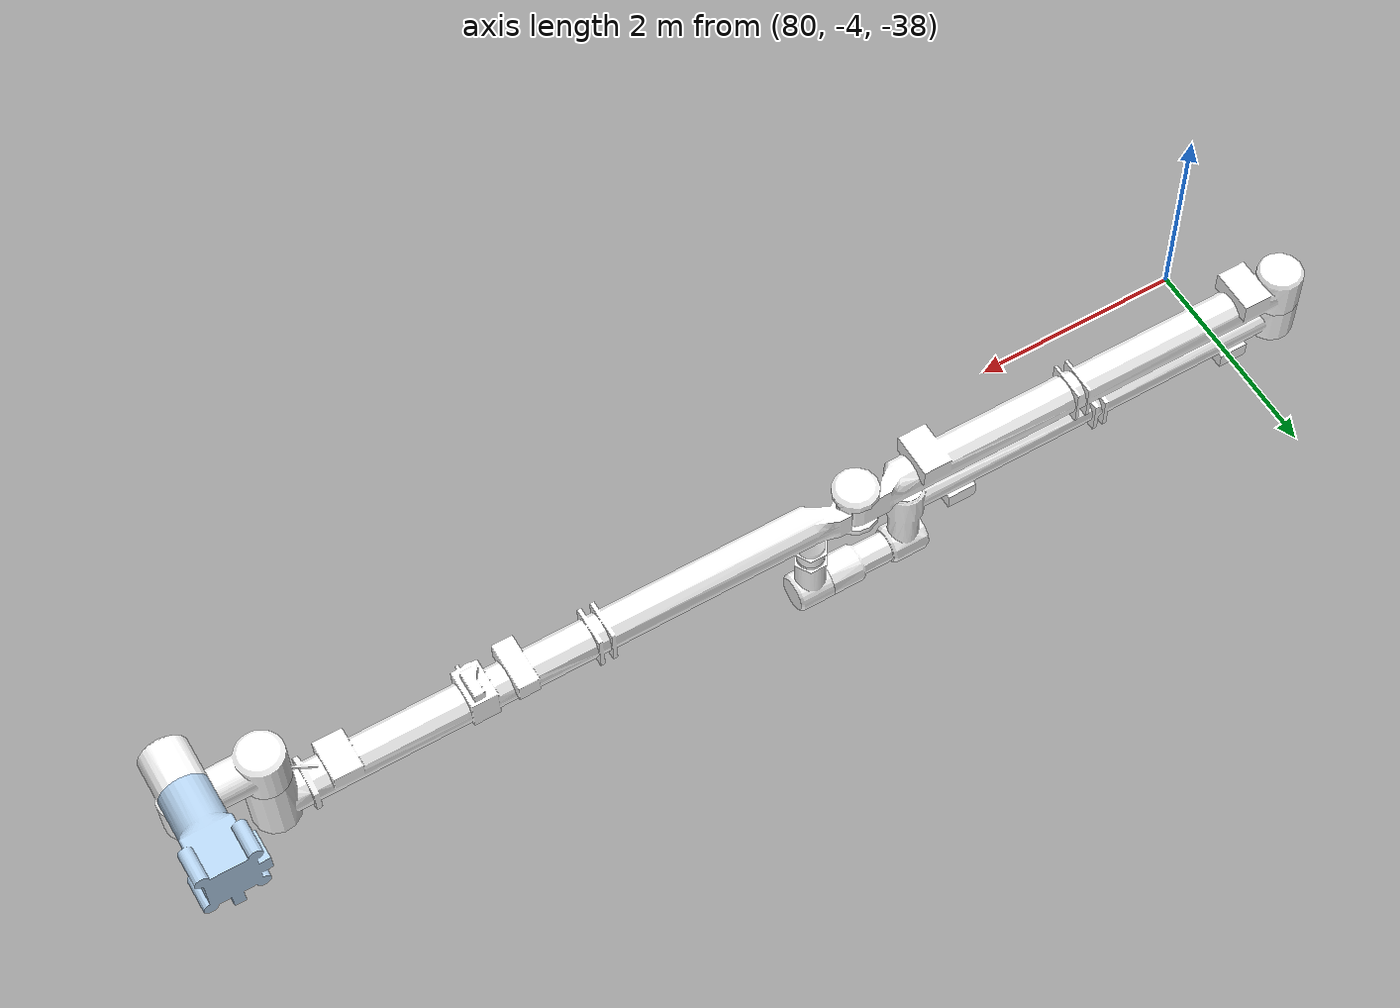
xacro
<?xml version="1.0"?>
<robot xmlns:xacro="http://www.ros.org/wiki/xacro" name="bean2">
    <xacro:arg name="initial_positions_file" default="initial_positions.yaml" />

    <!-- Import bean2 urdf file -->
    <xacro:include filename="$(find bean3_description)/urdf/bean2.urdf" />

    <!-- Import control_xacro -->
    <xacro:include filename="bean2.ros2_control.xacro" />

    <xacro:bean2_ros2_control name="GazeboSystem"
	    initial_positions_file="$(arg initial_positions_file)"/>

    <!-- ros gz plugin -->
    <gazebo>
	    <plugin filename="gz_ros2_control-system"
		    name="gz_ros2_control::GazeboSimROS2ControlPlugin">
	    <ros>
		    <namespace>bean</namespace>
	    </ros>
	    <parameters>$(find bean2_moveit)/config/ros2_controllers.yaml</parameters>
    </plugin>
    <!-- detachable joint plugin-->
	    <plugin filename="gz-sim-detachable-joint-system"
    name="gz::sim::systems::DetachableJoint">
    		<parent_link>docking_frame</parent_link>
    		<child_model>capsule</child_model>
    		<child_link>docking_target</child_link>
    		<detach_topic>/bean/detach</detach_topic>
    		<attach_topic>/bean/attach</attach_topic>
    		<output_topic>/bean/state</output_topic>
		</plugin>
    </gazebo>
</robot>

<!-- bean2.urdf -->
<robot name="bean2">
  <!-- adding fixed frame link for gazebo -->
  <link name="world"/>

<!-- Virtual Joint to fix robot to ISS -->
  <joint name="fixedFrameToWorld" type="fixed">
    <parent link="world"/>
    <child link="bean_base_link"/>
    <origin rpy="1.57 1.57 0.0" xyz="90.1 -1.95 -36.0"/>
  </joint>

  <!-- Basic Extraterrestrial Articulated maNipulator2 (BEAN2) is defined-->
  <link
    name="bean_base_link">
    <inertial>
      <origin
        xyz="0.0076403 -0.0077316 0.30748"
        rpy="0 0 0" />
      <mass
        value="140.69" />
      <inertia
        ixx="8.9233"
        ixy="-0.0083106"
        ixz="0.19212"
        iyy="8.9454"
        iyz="-0.18789"
        izz="5.5009" />
    </inertial>
    <visual>
      <origin
        xyz="0 0 0"
        rpy="0 0 0" />
      <geometry>
        <mesh
          filename="package://bean3_description/meshes/base_link.STL" />
      </geometry>
      <material
        name="">
        <color
          rgba="0.706 0.82 0.929 1" />
      </material>
    </visual>
    <collision>
      <origin
        xyz="0 0 0"
        rpy="0 0 0" />
      <geometry>
        <mesh
          filename="package://bean3_description/meshes/base_link.STL" />
      </geometry>
    </collision>
  </link>
  <link
    name="link_one">
    <inertial>
      <origin
        xyz="0.23706 0.42192 0.17122"
        rpy="0 0 0" />
      <mass
        value="264.21" />
      <inertia
        ixx="32.206"
        ixy="-15.566"
        ixz="-2.4455"
        iyy="31.567"
        iyz="-3.4761"
        izz="53.733" />
    </inertial>
    <visual>
      <origin
        xyz="0 0 0"
        rpy="0 0 0" />
      <geometry>
        <mesh
          filename="package://bean3_description/meshes/link_one.STL" />
      </geometry>
      <material
        name="">
        <color
          rgba="1 1 1 1" />
      </material>
    </visual>
    <collision>
      <origin
        xyz="0 0 0"
        rpy="0 0 0" />
      <geometry>
        <mesh
          filename="package://bean3_description/meshes/link_one.STL" />
      </geometry>
    </collision>
  </link>
  <joint
    name="joint_one"
    type="revolute">
    <origin
      xyz="0 0 0.875"
      rpy="0 0 -1.5708" />
    <parent
      link="bean_base_link" />
    <child
      link="link_one" />
    <axis
      xyz="0 0 1" />
    <limit
      lower="-3.14"
      upper="3.14"
      effort="1300"
      velocity="0.3" />
    <dynamics
      damping="0.2"
      friction="0.2" />
  </joint>
  <link
    name="link_two">
    <inertial>
      <origin
        xyz="-2.4928 -0.0010823 0.17636"
        rpy="0 0 0" />
      <mass
        value="615.5" />
      <inertia
        ixx="12.815"
        ixy="-2.9324"
        ixz="10.247"
        iyy="1781.1"
        iyz="0.022231"
        izz="1779.4" />
    </inertial>
    <visual>
      <origin
        xyz="0 0 0"
        rpy="0 0 0" />
      <geometry>
        <mesh
          filename="package://bean3_description/meshes/link_two.STL" />
      </geometry>
      <material
        name="">
        <color
          rgba="1 1 1 1" />
      </material>
    </visual>
    <collision>
      <origin
        xyz="0 0 0"
        rpy="0 0 0" />
      <geometry>
        <mesh
          filename="package://bean3_description/meshes/link_two.STL" />
      </geometry>
    </collision>
  </link>
  <joint
    name="joint_two"
    type="revolute">
    <origin
      xyz="0.67 1.035 0.21"
      rpy="1.5708 0 -3.1416" />
    <parent
      link="link_one" />
    <child
      link="link_two" />
    <axis
      xyz="0 0 1" />
    <limit
      lower="-3.14"
      upper="3.14"
      effort="1300"
      velocity="0.2" />
    <dynamics
      damping="0.2"
      friction="0.2" />
  </joint>
  <link
    name="link_three">
    <inertial>
      <origin
        xyz="2.2935 0.0014154 -0.018803"
        rpy="0 0 0" />
      <mass
        value="468.03" />
      <inertia
        ixx="9.0711"
        ixy="1.3435"
        ixz="5.0617"
        iyy="837.4"
        iyz="-0.01244"
        izz="836.79" />
    </inertial>
    <visual>
      <origin
        xyz="0 0 0"
        rpy="0 0 0" />
      <geometry>
        <mesh
          filename="package://bean3_description/meshes/link_three.STL" />
      </geometry>
      <material
        name="">
        <color
          rgba="1 1 1 1" />
      </material>
    </visual>
    <collision>
      <origin
        xyz="0 0 0"
        rpy="0 0 0" />
      <geometry>
        <mesh
          filename="package://bean3_description/meshes/link_three.STL" />
      </geometry>
    </collision>
  </link>
  <joint
    name="joint_three"
    type="revolute">
    <origin
      xyz="-5.46 0 0.1875"
      rpy="0 0 3.1416" />
    <parent
      link="link_two" />
    <child
      link="link_three" />
    <axis
      xyz="0 0 -1" />
    <limit
      lower="-1.4"
      upper="2.44"
      effort="1000"
      velocity="0.2" />
    <dynamics
      damping="0.2"
      friction="0.2" />
  </joint>
  <link
    name="link_four">
    <inertial>
      <origin
        xyz="2.1783 7.8425E-07 -0.10837"
        rpy="0 0 0" />
      <mass
        value="443.02" />
      <inertia
        ixx="35.29"
        ixy="-0.00010298"
        ixz="113.09"
        iyy="1111.3"
        iyz="1.5385E-05"
        izz="1082" />
    </inertial>
    <visual>
      <origin
        xyz="0 0 0"
        rpy="0 0 0" />
      <geometry>
        <mesh
          filename="package://bean3_description/meshes/link_four.STL" />
      </geometry>
      <material
        name="">
        <color
          rgba="1 1 1 1" />
      </material>
    </visual>
    <collision>
      <origin
        xyz="0 0 0"
        rpy="0 0 0" />
      <geometry>
        <mesh
          filename="package://bean3_description/meshes/link_four.STL" />
      </geometry>
    </collision>
  </link>
  <joint
    name="joint_four"
    type="revolute">
    <origin
      xyz="4.4 0 0.375"
      rpy="3.1416 0 3.1416" />
    <parent
      link="link_three" />
    <child
      link="link_four" />
    <axis
      xyz="0 0 -1" />
    <limit
      lower="-3.14"
      upper="3.14"
      effort="1000"
      velocity="0.2" />
    <dynamics
      damping="0.2"
      friction="0.2" />
  </joint>
  <link
    name="link_five">
    <inertial>
      <origin
        xyz="-1.2323E-07 0.10322 0.047186"
        rpy="0 0 0" />
      <mass
        value="65.693" />
      <inertia
        ixx="3.2326"
        ixy="2.9354E-06"
        ixz="-1.8121E-06"
        iyy="1.62"
        iyz="0.31997"
        izz="2.4339" />
    </inertial>
    <visual>
      <origin
        xyz="0 0 0"
        rpy="0 0 0" />
      <geometry>
        <mesh
          filename="package://bean3_description/meshes/link_five.STL" />
      </geometry>
      <material
        name="">
        <color
          rgba="1 1 1 1" />
      </material>
    </visual>
    <collision>
      <origin
        xyz="0 0 0"
        rpy="0 0 0" />
      <geometry>
        <mesh
          filename="package://bean3_description/meshes/link_five.STL" />
      </geometry>
    </collision>
  </link>
  <joint
    name="joint_five"
    type="revolute">
    <origin
      xyz="4.835 0 -0.65"
      rpy="1.5708 0 -1.5708" />
    <parent
      link="link_four" />
    <child
      link="link_five" />
    <axis
      xyz="0 0 1" />
    <limit
      lower="-6.28"
      upper="6.28"
      effort="500"
      velocity="0.5" />
    <dynamics
      damping="0.1"
      friction="0.1" />
  </joint>
  <link
    name="link_six">
    <inertial>
      <origin
        xyz="-0.0031191 -0.0018008 -0.12806"
        rpy="0 0 0" />
      <mass
        value="13.062" />
      <inertia
        ixx="0.12452"
        ixy="-0.0028533"
        ixz="0.0017542"
        iyy="0.12781"
        iyz="0.0010128"
        izz="0.10261" />
    </inertial>
    <visual>
      <origin
        xyz="0 0 0"
        rpy="0 0 0" />
      <geometry>
        <mesh
          filename="package://bean3_description/meshes/link_six.STL" />
      </geometry>
      <material
        name="">
        <color
          rgba="1 1 1 1" />
      </material>
    </visual>
    <collision>
      <origin
        xyz="0 0 0"
        rpy="0 0 0" />
      <geometry>
        <mesh
          filename="package://bean3_description/meshes/link_six.STL" />
      </geometry>
    </collision>
  </link>
  <joint
    name="joint_six"
    type="revolute">
    <origin
      xyz="0 0.5 0"
      rpy="-1.5708 0 3.1416" />
    <parent
      link="link_five" />
    <child
      link="link_six" />
    <axis
      xyz="0 0 -1" />
    <limit
      lower="-6.28"
      upper="6.28"
      effort="500"
      velocity="0.8" />
    <dynamics
      damping="0.1"
      friction="0.1" />
  </joint>
  <!-- virtual end effector joint for capsule sim task -->
  <link name="docking_frame">
    <visual>
    <origin xyz="0.0 0.0 0.0" rpy="0.0 0.0 0.0"/>
    <geometry>
      <sphere radius="0.005"/>
    </geometry>
    <material name="orange">
      <color rgba="1.0 0.5 0.0 1.0"/>
    </material>
  </visual>
  <collision>
    <origin xyz="0.0 0.0 0.0" rpy="0.0 0.0 0.0"/>
    <geometry>
      <sphere radius="0.005"/>
    </geometry>
  </collision>
  <inertial>
    <origin xyz="0.0 0.0 0.0" rpy="0.0 0.0 0.0"/>
    <mass value="0.001"/>
    <inertia ixx="1e-9" ixy="0.0" ixz="0.0"
             iyy="1e-9" iyz="0.0"
             izz="1e-9"/>
  </inertial>
</link>
  <joint name="docking_joint" type="fixed">
	  <parent link="link_six"/>
	  <child link="docking_frame"/>
	  <origin xyz="0.0 0.0 -0.333" rpy ="0.0 0.0 0.0"/>
  </joint>
  <gazebo reference="docking_joint">
	  <preserveFixedJoint>true</preserveFixedJoint>
  </gazebo>
</robot>
